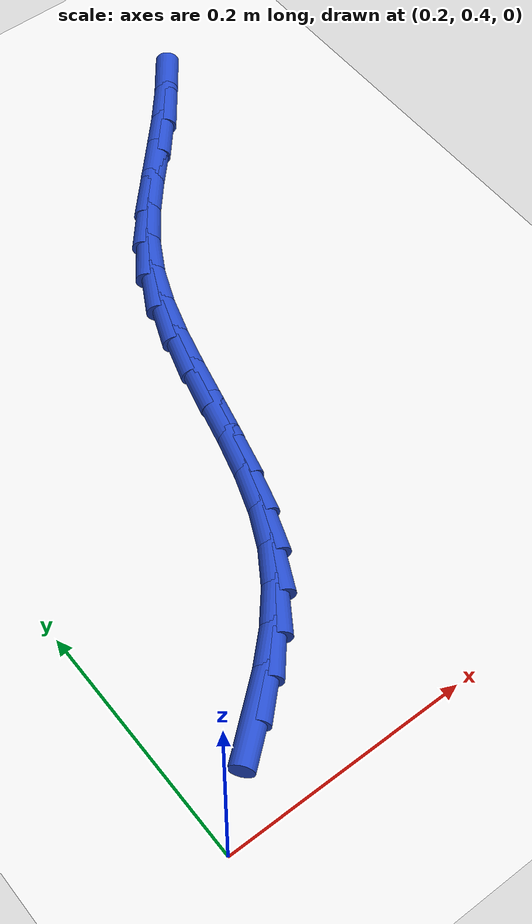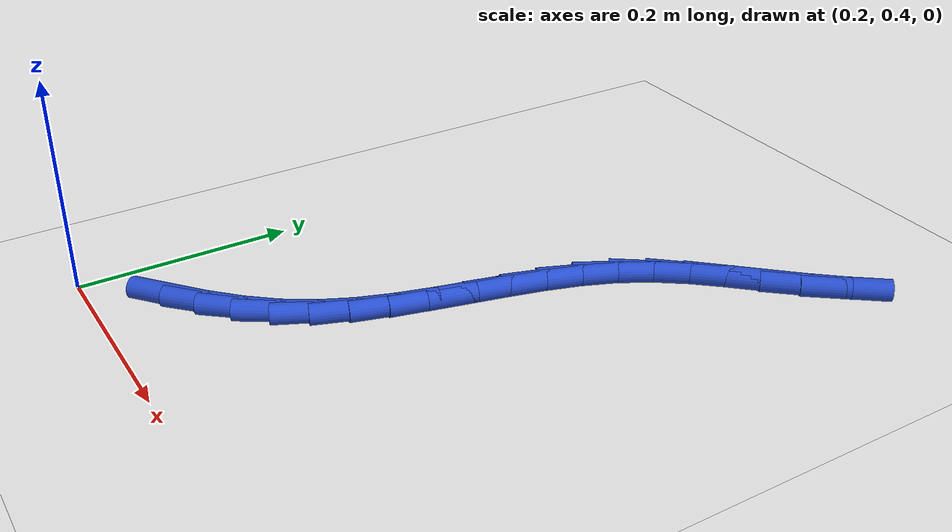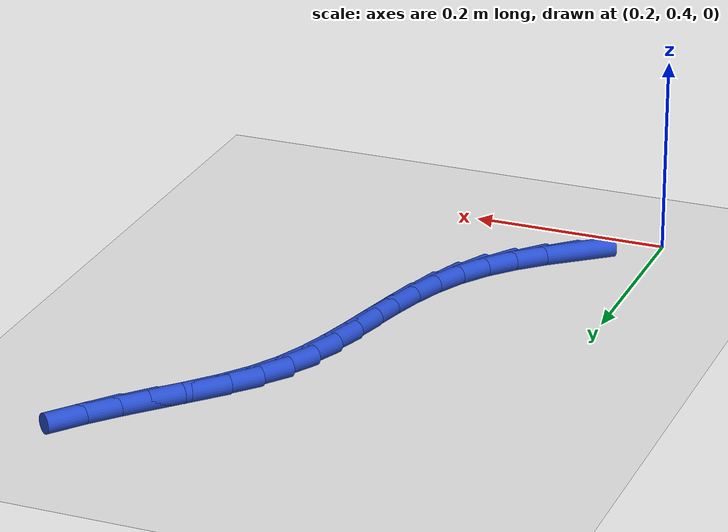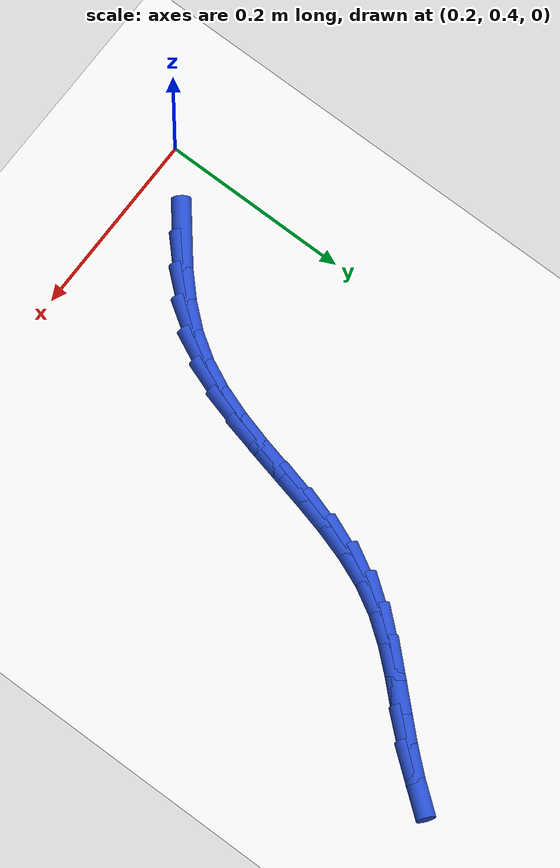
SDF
<sdf version="1.6">
 <world name="default">
  <model name="ground_plane">
   <static>1</static>
   <link name="link">
    <collision name="collision">
     <geometry><plane><normal>0 0 1</normal><size>100 100</size></plane></geometry>
     <surface><friction><ode><mu>100</mu><mu2>50</mu2></ode></friction></surface>
    </collision>
    <visual name="visual">
     <cast_shadows>0</cast_shadows>
     <geometry><plane><normal>0 0 1</normal><size>100 100</size></plane></geometry>
     <material>
      <script><uri>file://media/materials/scripts/gazebo.material</uri><name>Gazebo/WhiteGlow</name></script>
     </material>
    </visual>
   </link>
  </model>
  <model name="line">
   <link name="link_17">
    <pose>0.27146656448414996 0.46369030775127584 0.01 0 1.57 0.6837292656225489</pose>
    <collision name="collision">
     <geometry><cylinder><radius>0.01</radius><length>0.08</length></cylinder></geometry>
    </collision>
    <visual name="visual">
     <material>
      <script><name>Gazebo/Blue</name><uri>file://media/materials/scripts/gazebo.material</uri></script>
     </material>
     <geometry><cylinder><radius>0.01</radius><length>0.08</length></cylinder></geometry>
    </visual>
   </link>
   <link name="link_18">
    <pose>0.2981613506495537 0.4854425013292857 0.01 0 1.57 0.7599019976356562</pose>
    <collision name="collision">
     <geometry><cylinder><radius>0.01</radius><length>0.08</length></cylinder></geometry>
    </collision>
    <visual name="visual">
     <material>
      <script><name>Gazebo/Blue</name><uri>file://media/materials/scripts/gazebo.material</uri></script>
     </material>
     <geometry><cylinder><radius>0.01</radius><length>0.08</length></cylinder></geometry>
    </visual>
   </link>
   <link name="link_19">
    <pose>0.32259643725113873 0.5086623075401355 0.01 0 1.57 0.8615571871883946</pose>
    <collision name="collision">
     <geometry><cylinder><radius>0.01</radius><length>0.08</length></cylinder></geometry>
    </collision>
    <visual name="visual">
     <material>
      <script><name>Gazebo/Blue</name><uri>file://media/materials/scripts/gazebo.material</uri></script>
     </material>
     <geometry><cylinder><radius>0.01</radius><length>0.08</length></cylinder></geometry>
    </visual>
   </link>
   <link name="link_20">
    <pose>0.34412608566972963 0.5337490985118567 0.01 0 1.57 0.9892517016680953</pose>
    <collision name="collision">
     <geometry><cylinder><radius>0.01</radius><length>0.08</length></cylinder></geometry>
    </collision>
    <visual name="visual">
     <material>
      <script><name>Gazebo/Blue</name><uri>file://media/materials/scripts/gazebo.material</uri></script>
     </material>
     <geometry><cylinder><radius>0.01</radius><length>0.08</length></cylinder></geometry>
    </visual>
   </link>
   <link name="link_21">
    <pose>0.3621066092203056 0.5611009636002877 0.01 0 1.57 1.1245489932387878</pose>
    <collision name="collision">
     <geometry><cylinder><radius>0.01</radius><length>0.08</length></cylinder></geometry>
    </collision>
    <visual name="visual">
     <material>
      <script><name>Gazebo/Blue</name><uri>file://media/materials/scripts/gazebo.material</uri></script>
     </material>
     <geometry><cylinder><radius>0.01</radius><length>0.08</length></cylinder></geometry>
    </visual>
   </link>
   <link name="link_22">
    <pose>0.3763350365631058 0.5908404777697857 0.01 0 1.57 1.2288416815091314</pose>
    <collision name="collision">
     <geometry><cylinder><radius>0.01</radius><length>0.08</length></cylinder></geometry>
    </collision>
    <visual name="visual">
     <material>
      <script><name>Gazebo/Blue</name><uri>file://media/materials/scripts/gazebo.material</uri></script>
     </material>
     <geometry><cylinder><radius>0.01</radius><length>0.08</length></cylinder></geometry>
    </visual>
   </link>
   <link name="link_23">
    <pose>0.387594507197375 0.6224737461234643 0.01 0 1.57 1.2983034303193903</pose>
    <collision name="collision">
     <geometry><cylinder><radius>0.01</radius><length>0.08</length></cylinder></geometry>
    </collision>
    <visual name="visual">
     <material>
      <script><name>Gazebo/Blue</name><uri>file://media/materials/scripts/gazebo.material</uri></script>
     </material>
     <geometry><cylinder><radius>0.01</radius><length>0.08</length></cylinder></geometry>
    </visual>
   </link>
   <link name="link_24">
    <pose>0.3968020255121778 0.6554231877660794 0.01 0 1.57 1.3356038408064639</pose>
    <collision name="collision">
     <geometry><cylinder><radius>0.01</radius><length>0.08</length></cylinder></geometry>
    </collision>
    <visual name="visual">
     <material>
      <script><name>Gazebo/Blue</name><uri>file://media/materials/scripts/gazebo.material</uri></script>
     </material>
     <geometry><cylinder><radius>0.01</radius><length>0.08</length></cylinder></geometry>
    </visual>
   </link>
   <link name="link_25">
    <pose>0.40487459589657865 0.6891112218023867 0.01 0 1.57 1.342783047570714</pose>
    <collision name="collision">
     <geometry><cylinder><radius>0.01</radius><length>0.08</length></cylinder></geometry>
    </collision>
    <visual name="visual">
     <material>
      <script><name>Gazebo/Blue</name><uri>file://media/materials/scripts/gazebo.material</uri></script>
     </material>
     <geometry><cylinder><radius>0.01</radius><length>0.08</length></cylinder></geometry>
    </visual>
   </link>
   <link name="link_26">
    <pose>0.41272922273964247 0.7229602673371428 0.01 0 1.57 1.3203197230353265</pose>
    <collision name="collision">
     <geometry><cylinder><radius>0.01</radius><length>0.08</length></cylinder></geometry>
    </collision>
    <visual name="visual">
     <material>
      <script><name>Gazebo/Blue</name><uri>file://media/materials/scripts/gazebo.material</uri></script>
     </material>
     <geometry><cylinder><radius>0.01</radius><length>0.08</length></cylinder></geometry>
    </visual>
   </link>
   <link name="link_27">
    <pose>0.4212829104304337 0.7563927434751038 0.01 0 1.57 1.266991204948427</pose>
    <collision name="collision">
     <geometry><cylinder><radius>0.01</radius><length>0.08</length></cylinder></geometry>
    </collision>
    <visual name="visual">
     <material>
      <script><name>Gazebo/Blue</name><uri>file://media/materials/scripts/gazebo.material</uri></script>
     </material>
     <geometry><cylinder><radius>0.01</radius><length>0.08</length></cylinder></geometry>
    </visual>
   </link>
   <link name="link_28">
    <pose>0.431452663358017 0.7888310693210253 0.01 0 1.57 1.1803818665584005</pose>
    <collision name="collision">
     <geometry><cylinder><radius>0.01</radius><length>0.08</length></cylinder></geometry>
    </collision>
    <visual name="visual">
     <material>
      <script><name>Gazebo/Blue</name><uri>file://media/materials/scripts/gazebo.material</uri></script>
     </material>
     <geometry><cylinder><radius>0.01</radius><length>0.08</length></cylinder></geometry>
    </visual>
   </link>
   <link name="link_29">
    <pose>0.44415548591145704 0.8196976639796636 0.01 0 1.57 1.059244512512648</pose>
    <collision name="collision">
     <geometry><cylinder><radius>0.01</radius><length>0.08</length></cylinder></geometry>
    </collision>
    <visual name="visual">
     <material>
      <script><name>Gazebo/Blue</name><uri>file://media/materials/scripts/gazebo.material</uri></script>
     </material>
     <geometry><cylinder><radius>0.01</radius><length>0.08</length></cylinder></geometry>
    </visual>
   </link>
   <link name="link_30">
    <pose>0.46028606394032745 0.8484305463985041 0.01 0 1.57 0.9360042531074427</pose>
    <collision name="collision">
     <geometry><cylinder><radius>0.01</radius><length>0.08</length></cylinder></geometry>
    </collision>
    <visual name="visual">
     <material>
      <script><name>Gazebo/Blue</name><uri>file://media/materials/scripts/gazebo.material</uri></script>
     </material>
     <geometry><cylinder><radius>0.01</radius><length>0.08</length></cylinder></geometry>
    </visual>
   </link>
   <link name="link_31">
    <pose>0.4798959549823933 0.875057051374757 0.01 0 1.57 0.8537790698344769</pose>
    <collision name="collision">
     <geometry><cylinder><radius>0.01</radius><length>0.08</length></cylinder></geometry>
    </collision>
    <visual name="visual">
     <material>
      <script><name>Gazebo/Blue</name><uri>file://media/materials/scripts/gazebo.material</uri></script>
     </material>
     <geometry><cylinder><radius>0.01</radius><length>0.08</length></cylinder></geometry>
    </visual>
   </link>
   <link name="link_32">
    <pose>0.5019554323750671 0.900360291810105 0.01 0 1.57 0.8145092933418777</pose>
    <collision name="collision">
     <geometry><cylinder><radius>0.01</radius><length>0.08</length></cylinder></geometry>
    </collision>
    <visual name="visual">
     <material>
      <script><name>Gazebo/Blue</name><uri>file://media/materials/scripts/gazebo.material</uri></script>
     </material>
     <geometry><cylinder><radius>0.01</radius><length>0.08</length></cylinder></geometry>
    </visual>
   </link>
   <link name="link_33">
    <pose>0.5253638936673601 0.925172920189804 0.01 0 1.57 0.8160744558498942</pose>
    <collision name="collision">
     <geometry><cylinder><radius>0.01</radius><length>0.08</length></cylinder></geometry>
    </collision>
    <visual name="visual">
     <material>
      <script><name>Gazebo/Blue</name><uri>file://media/materials/scripts/gazebo.material</uri></script>
     </material>
     <geometry><cylinder><radius>0.01</radius><length>0.08</length></cylinder></geometry>
    </visual>
   </link>
   <link name="link_34">
    <pose>0.5490207364082835 0.9503275889991104 0.01 0 1.57 0.8560017176470157</pose>
    <collision name="collision">
     <geometry><cylinder><radius>0.01</radius><length>0.08</length></cylinder></geometry>
    </collision>
    <visual name="visual">
     <material>
      <script><name>Gazebo/Blue</name><uri>file://media/materials/scripts/gazebo.material</uri></script>
     </material>
     <geometry><cylinder><radius>0.01</radius><length>0.08</length></cylinder></geometry>
    </visual>
   </link>
   <link name="link_35">
    <pose>0.5718519819214575 0.9766338965611188 0.01 0 1.57 0.9088975280710291</pose>
    <collision name="collision">
     <geometry><cylinder><radius>0.01</radius><length>0.08</length></cylinder></geometry>
    </collision>
    <visual name="visual">
     <material>
      <script><name>Gazebo/Blue</name><uri>file://media/materials/scripts/gazebo.material</uri></script>
     </material>
     <geometry><cylinder><radius>0.01</radius><length>0.08</length></cylinder></geometry>
    </visual>
   </link>
  </model>
 </world>
</sdf>
